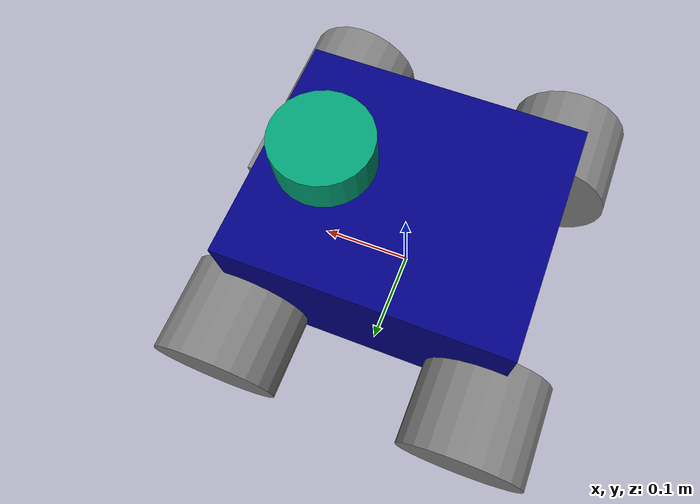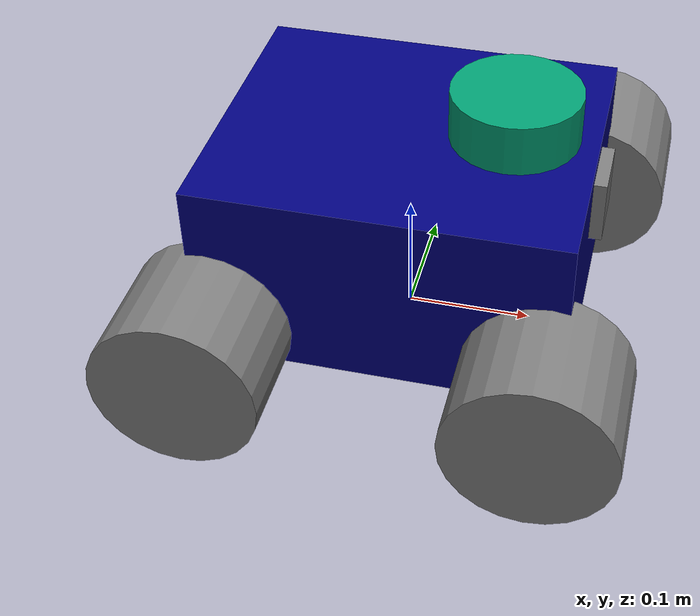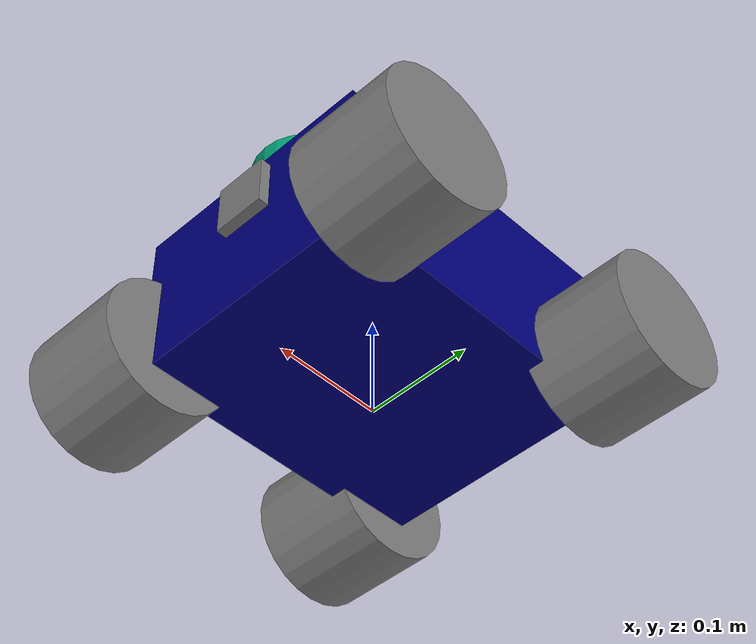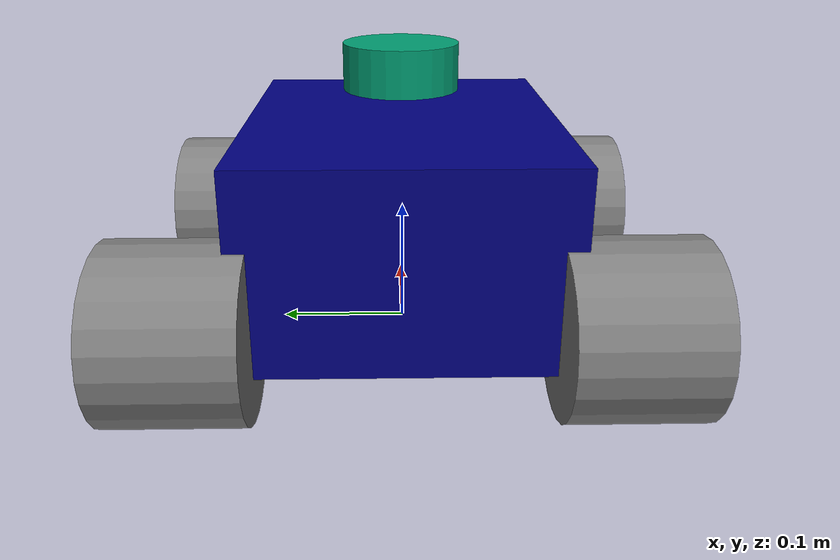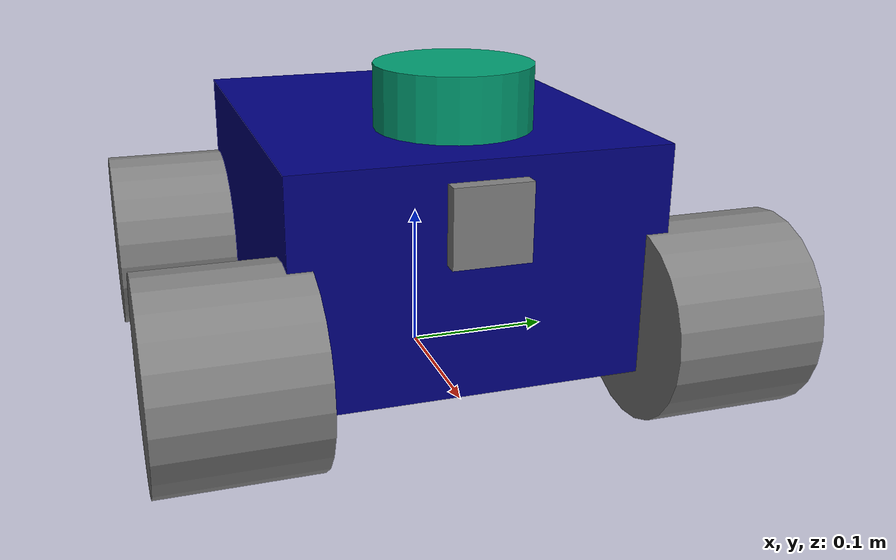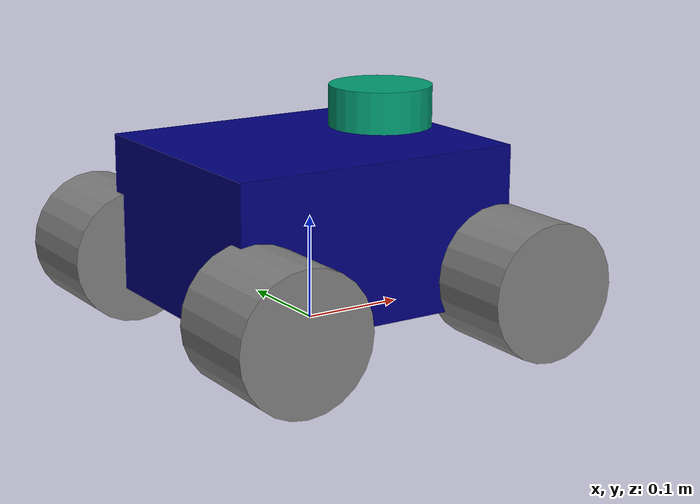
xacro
<?xml version="1.0" ?>

<robot name="yardguard" xmlns:xacro="http://www.ros.org/wiki/xacro">

  <xacro:arg name="prefix" default="back" />
  <xacro:arg name="use_mock_hardware" default="false" />
  <xacro:include filename="common_properties.xacro" />
  <xacro:include filename="diffbot.ros2_control.xacro" />
  <xacro:include filename="camera.xacro" />
  <xacro:include filename="lidar.xacro" />
  <xacro:include filename="mobile_base.xacro" />
  <xacro:diffbot_ros2_control
    name="DiffBot" prefix="$(arg prefix)" use_mock_hardware="$(arg use_mock_hardware)"/>

</robot>

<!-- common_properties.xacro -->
<robot xmlns:xacro="http://www.ros.org/wiki/xacro">

  <xacro:property name="base_length" value="0.288" />
  <xacro:property name="base_width" value="0.24" />
  <xacro:property name="base_height" value="0.15" />
    <xacro:property name="wheel_radius" value="0.065" />
  <xacro:property name="wheel_length" value="0.1" />

    <material name="blue">
        <color rgba="0 0 0.5 1" />
    </material>

    <material name="grey">
        <color rgba="0.5 0.5 0.5 1" />
    </material>

    <xacro:macro name="box_inertia" params="m x y z o_xyz o_rpy">
        <inertial>
            <mass value="${m}" />
            <origin xyz="${o_xyz}" rpy="${o_rpy}" />
            <inertia ixx="${(m/12) * (y*y + z*z)}" ixy="0" ixz="0"
                     iyy="${(m/12) * (x*x + z*z)}" iyz="0"
                     izz="${(m/12) * (x*x + y*y)}" />
        </inertial>
    </xacro:macro>

    <xacro:macro name="cylinder_inertia" params="m r l o_xyz o_rpy">
        <inertial>
            <mass value="${m}" />
            <origin xyz="${o_xyz}" rpy="${o_rpy}" />
            <inertia ixx="${(m/12) * (3*r*r + l*l)}" ixy="0" ixz="0"
                     iyy="${(m/12) * (3*r*r + l*l)}" iyz="0"
                     izz="${(m/2) * (r*r)}" />
        </inertial>
    </xacro:macro>

    <xacro:macro name="sphere_inertia" params="m r o_xyz o_rpy">
        <inertial>
            <mass value="${m}" />
            <origin xyz="${o_xyz}" rpy="${o_rpy}" />
            <inertia ixx="${(2/5) * m * r * r}" ixy="0" ixz="0"
                     iyy="${(2/5) * m * r * r}" iyz="0"
                     izz="${(2/5) * m * r * r}" />
        </inertial>
    </xacro:macro>

</robot>

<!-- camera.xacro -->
<robot name="yardguard" xmlns:xacro="http://www.ros.org/wiki/xacro">

    <xacro:property name="camera_length" value="0.01" />
    <xacro:property name="camera_width" value="0.05" />
    <xacro:property name="camera_height" value="0.05" />

    <link name="camera_link">
        <visual>
            <geometry>
                <box size="${camera_length} ${camera_width} ${camera_height}" />
            </geometry>
            <material name="grey" />
        </visual>
        <collision>
            <geometry>
                <box size="${camera_length} ${camera_width} ${camera_height}" />
            </geometry>
        </collision>
        <xacro:box_inertia m="0.1" x="${camera_length}" y="${camera_width}" z="${camera_height}"
                           o_xyz="0 0 0" o_rpy="0 0 0" />
    </link>

    <joint name="base_camera_joint" type="fixed">
        <parent link="base_link" />
        <child link="camera_link" />
        <origin xyz="${(base_length + camera_length) / 2.0} 0 ${base_height / 4.0}" rpy="0 0 0" />
    </joint>

    <link name="camera_link_optical" />

    <joint name="camera_optical_joint" type="fixed">
        <origin xyz="0 0 0" rpy="${-pi/2} 0 ${-pi/2}"/>
        <parent link="camera_link"/>
        <child link="camera_link_optical"/>
    </joint>

    <gazebo reference="camera_link">
        <sensor name="camera" type="camera">
            <camera>
                <horizontal_fov>1.3962634</horizontal_fov>
                <image>
                    <width>640</width>
                    <height>480</height>
                    <format>R8G8B8</format>
                </image>
                <clip>
                    <near>0.1</near>
                    <far>15</far>
                </clip>
                <noise>
                    <type>gaussian</type>
                    <mean>0.0</mean>
                    <stddev>0.007</stddev>
                </noise>
                <optical_frame_id>camera_link_optical</optical_frame_id>
                <camera_info_topic>camera/camera_info</camera_info_topic>
            </camera>
            <always_on>1</always_on>
            <update_rate>20</update_rate>
            <visualize>true</visualize>
            <topic>camera/image_raw</topic>
        </sensor>
    </gazebo>

</robot>

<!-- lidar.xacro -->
<robot xmlns:xacro="www.ros.org">

  <!-- Lidar Link Definition -->
  <link name="base_scan">
      <visual>
          <geometry>
              <!-- Example dimensions for a common Lidar -->
              <cylinder radius="0.05" length="0.04"/>
          </geometry>
          <!-- Position the visual relative to the link's origin -->
          <origin xyz="0 0 0" rpy="0 0 0"/>
      </visual>
      <collision>
          <geometry>
              <cylinder radius="0.05" length="0.04"/>
          </geometry>
          <origin xyz="0 0 0" rpy="0 0 0"/>
      </collision>
      <!-- Define inertial properties (simplified example) -->
      <inertial>
          <mass value="0.1"/>
          <origin xyz="0 0 0" rpy="0 0 0"/>
          <inertia ixx="0.0001" ixy="0.0" ixz="0.0" iyy="0.0001" iyz="0.0" izz="0.0001"/>
      </inertial>
  </link>

  <!-- Lidar Joint Definition -->
  <joint name="lidar_joint" type="fixed">
      <parent link="base_link"/>
      <child link="base_scan"/>
      <!-- Position the lidar on top of the parent link (adjust xyz values as needed) -->
      <origin xyz="0.08 0 0.1" rpy="0 0 0"/>
  </joint>

  <gazebo reference="base_scan">
      <sensor name="lidar" type="gpu_lidar">
          <always_on>true</always_on>
          <visualize>true</visualize>
          <update_rate>10</update_rate>
          <topic>scan</topic>
          <gz_frame_id>base_scan</gz_frame_id>
          <lidar>
              <scan>
                  <horizontal>
                      <samples>360</samples>
                      <resolution>1</resolution>
                      <min_angle>-3.14</min_angle>
                      <max_angle>3.14</max_angle>
                  </horizontal>
                  <!-- This does not work correctly -->
              </scan>
              <range>
                  <min>0.1</min>
                  <max>10.0</max>
                  <resolution>0.01</resolution>
              </range>
          </lidar>
      </sensor>
  </gazebo>

</robot>

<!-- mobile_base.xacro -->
<robot name="yardguard" xmlns:xacro="http://www.ros.org/wiki/xacro">

  <!-- base_footprint (projection of base_link on the ground) -->
  <link name="base_footprint"/>
  <joint name="base_joint" type="fixed">
    <parent link="base_footprint"/>
    <child link="base_link"/>
    <origin rpy="0 0 0" xyz="0 0 ${wheel_radius + 0.035}"/>
  </joint>
  <!-- base_link and base_scan (required for Nav2) -->
  <link name="base_link">
    <visual>
      <geometry>
        <box size="${base_length} ${base_width} ${base_height} "/>
      </geometry>
      <origin rpy="0 0 0" xyz="0 0 0"/>
      <material name="blue"/>
    </visual>
    <collision>
        <geometry>
            <box size="${base_length} ${base_width} ${base_height}" />
        </geometry>
        <origin xyz="0 0 ${base_height / 2.0}" rpy="0 0 0" />
    </collision>
    <xacro:box_inertia m="5.0" x="${base_length}" y="${base_width}" z="${base_height}"
                           o_xyz="0 0 ${base_height / 2.0}" o_rpy="0 0 0" />
  </link>
  <!-- Wheels (2 differential wheels + 1 caster wheel to keep the balance) -->
  <joint name="back_left_wheel_joint" type="continuous">
    <parent link="base_link"/>
    <child link="back_left_wheel"/>
    <origin rpy="0 0 0" xyz="-0.13 0.155 -0.045"/>
    <axis xyz="0 1 0"/>
  </joint>
  <link name="back_left_wheel">
    <visual>
      <geometry>
        <cylinder length="${wheel_length}" radius="${wheel_radius}"/>
      </geometry>
      <origin rpy="1.57 0 0" xyz="0 0 0"/>
      <material name="grey"/>
    </visual>
    <collision>
        <geometry>
            <sphere radius="${wheel_radius}" />
        </geometry>
        <origin xyz="0 0 0" rpy="0 0 0" />
    </collision>
    <xacro:cylinder_inertia m="1.0" r="${wheel_radius}" l="${wheel_length}"
                            o_xyz="0 0 0" o_rpy="${pi / 2.0} 0 0" />
  </link>
  <joint name="back_right_wheel_joint" type="continuous">
    <parent link="base_link"/>
    <child link="back_right_wheel"/>
    <origin rpy="0 0 0" xyz="-0.13 -0.155 -0.045"/>
    <axis xyz="0 1 0"/>
  </joint>
  <link name="back_right_wheel">
    <visual>
      <geometry>
        <cylinder length="${wheel_length}" radius="${wheel_radius}"/>
      </geometry>
      <origin rpy="1.57 0 0" xyz="0 0 0"/>
      <material name="grey"/>
    </visual>
    <collision>
        <geometry>
            <sphere radius="${wheel_radius}" />
        </geometry>
        <origin xyz="0 0 0" rpy="0 0 0" />
    </collision>
    <xacro:cylinder_inertia m="1.0" r="${wheel_radius}" l="${wheel_length}"
                            o_xyz="0 0 0" o_rpy="${pi / 2.0} 0 0" />
  </link>
  <joint name="front_right_wheel_joint" type="continuous">
    <parent link="base_link"/>
    <child link="front_right_wheel"/>
    <origin rpy="0 0 0" xyz="0.13 -0.155 -0.045"/>
    <axis xyz="0 1 0"/>
  </joint>
  <link name="front_right_wheel">
    <visual>
      <geometry>
        <cylinder length="${wheel_length}" radius="${wheel_radius}"/>
      </geometry>
      <origin rpy="1.57 0 0" xyz="0 0 0"/>
      <material name="grey"/>
    </visual>
    <collision>
        <geometry>
            <sphere radius="${wheel_radius}" />
        </geometry>
        <origin xyz="0 0 0" rpy="0 0 0" />
    </collision>
    <xacro:cylinder_inertia m="1.0" r="${wheel_radius}" l="${wheel_length}"
                            o_xyz="0 0 0" o_rpy="${pi / 2.0} 0 0" />
  </link>
  <joint name="front_left_wheel_joint" type="continuous">
    <parent link="base_link"/>
    <child link="front_left_wheel"/>
    <origin rpy="0 0 0" xyz="0.13 0.155 -0.045"/>
    <axis xyz="0 1 0"/>
  </joint>
  <link name="front_left_wheel">
    <visual>
      <geometry>
        <cylinder length="${wheel_length}" radius="${wheel_radius}"/>
      </geometry>
      <origin rpy="1.57 0 0" xyz="0 0 0"/>
      <material name="grey"/>
    </visual>
    <collision>
        <geometry>
            <sphere radius="${wheel_radius}" />
        </geometry>
        <origin xyz="0 0 0" rpy="0 0 0" />
    </collision>
    <xacro:cylinder_inertia m="1.0" r="${wheel_radius}" l="${wheel_length}"
                            o_xyz="0 0 0" o_rpy="${pi / 2.0} 0 0" />
  </link>
</robot>
